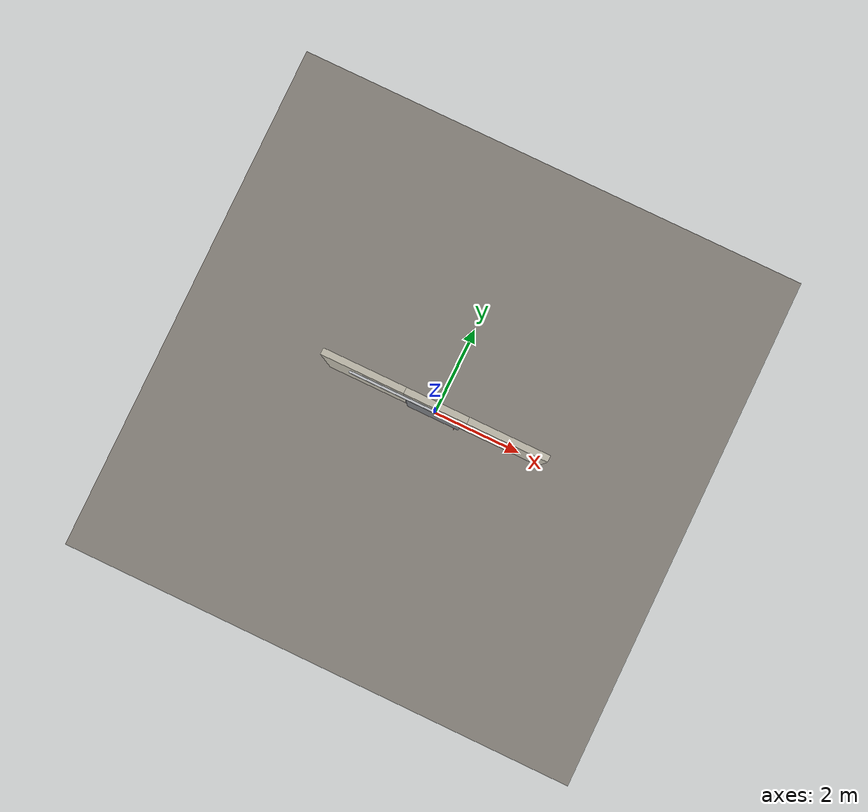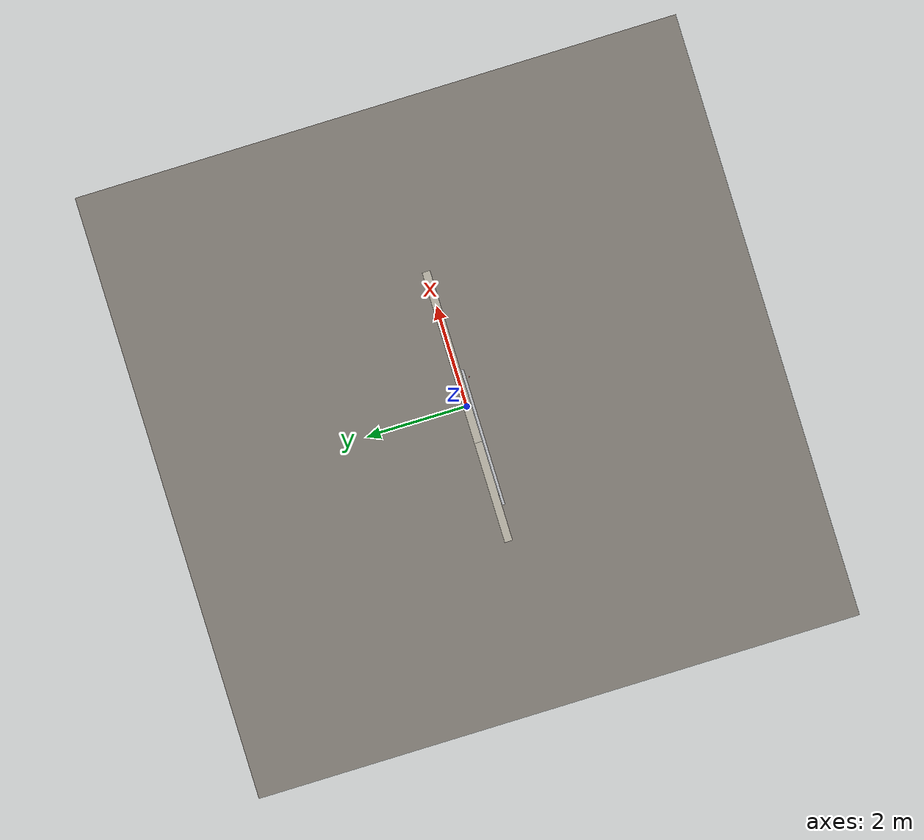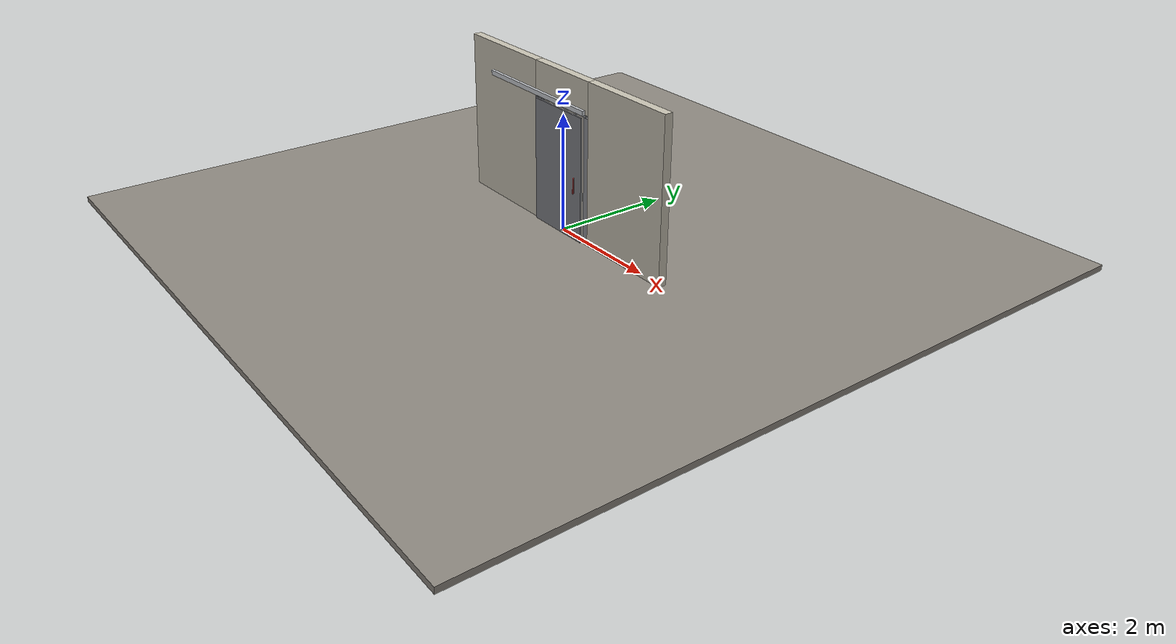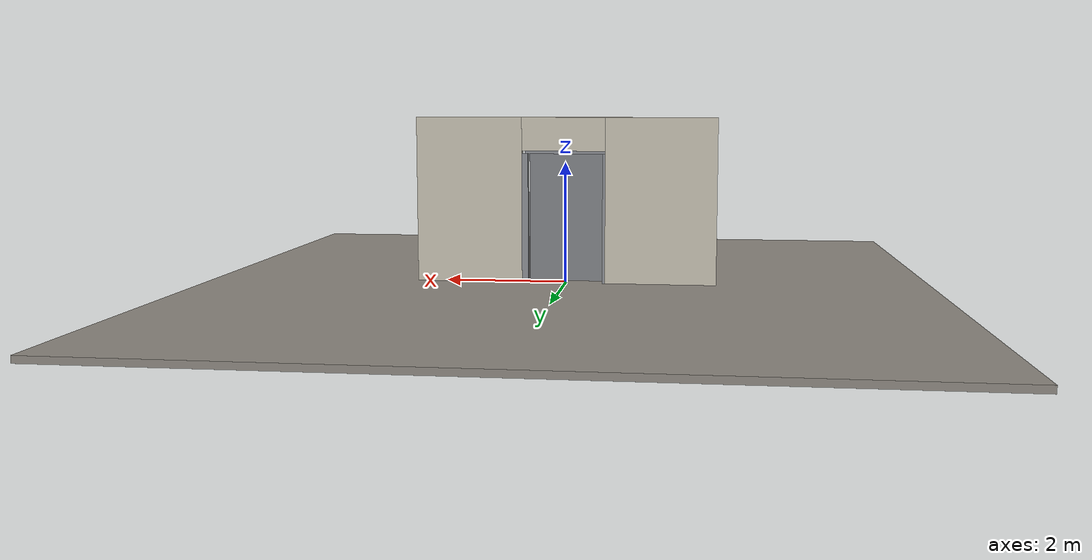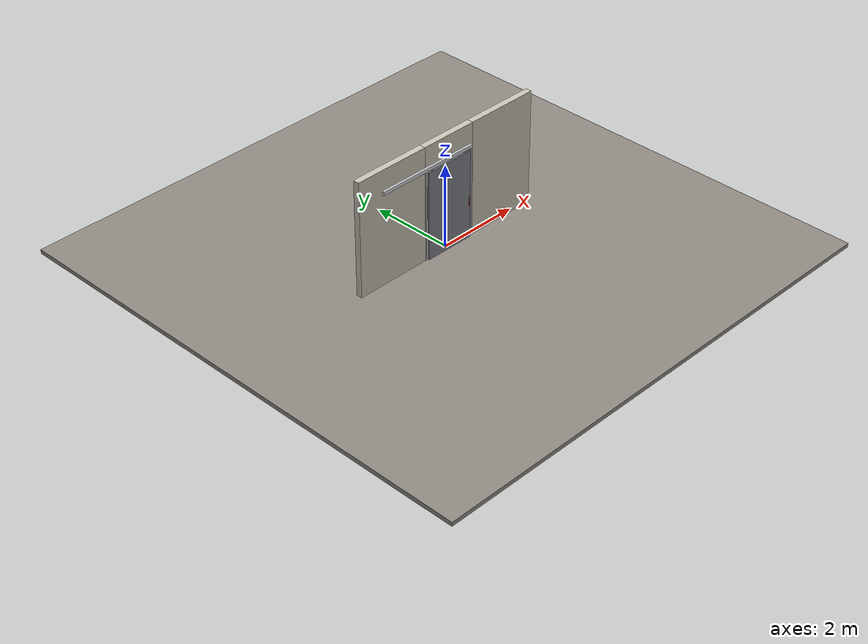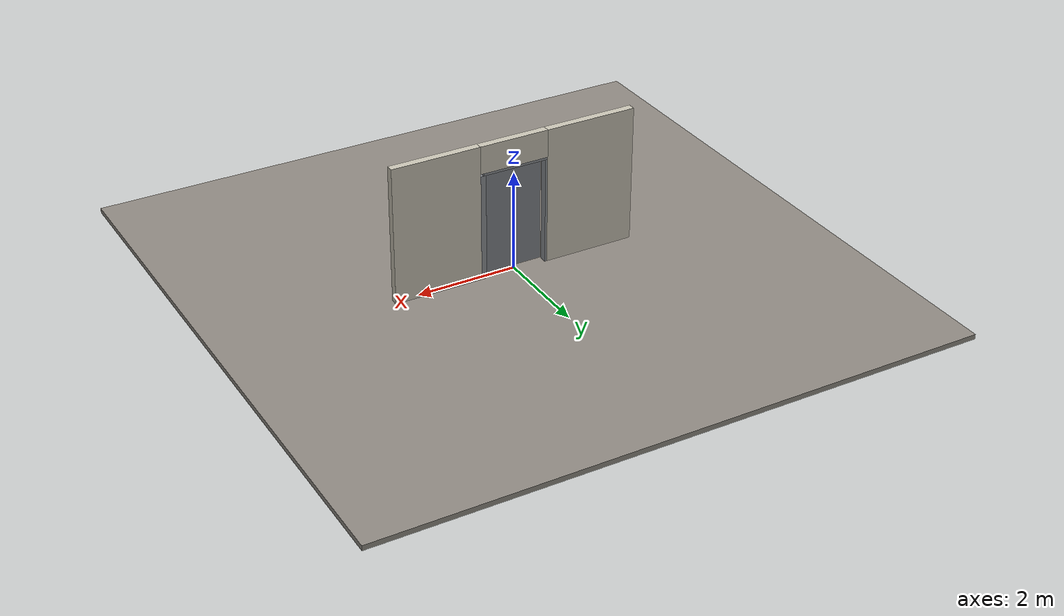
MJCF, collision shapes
<?xml version="1.0" ?>
<mujoco model="db0656_sliding_single_simple">
  <compiler angle="radian" meshdir="../../hardware" texturedir="../../textures" autolimits="true" inertiafromgeom="false"/>
  <option timestep="0.002" integrator="implicitfast" cone="elliptic" impratio="10" noslip_iterations="3">
    <flag multiccd="enable"/>
  </option>
  <size memory="16M"/>
  <default>
    <geom condim="4" solref="0.005 1" solimp="0.95 0.99 0.001"/>
    <joint solreflimit="0.005 1" solimplimit="0.95 0.99 0.001"/>
    <tendon solreflimit="0.005 1"/>
    <equality solref="0.002 1"/>
  </default>
  <visual>
    <headlight ambient="0.4 0.4 0.4" diffuse="0.7 0.7 0.7" specular="0.2 0.2 0.2"/>
    <quality shadowsize="4096"/>
    <map znear="0.01" zfar="60"/>
  </visual>
  <asset>
    <mesh name="pull_f8d79d6331" file="pull_f8d79d6331.obj"/>
    <material name="mat_floor" rgba="0.55 0.53 0.5 1" specular="0.2" shininess="0.15" reflectance="0"/>
    <material name="mat_wall" rgba="0.78 0.76 0.7 1" specular="0.2" shininess="0.1" reflectance="0"/>
    <material name="mat_frame" rgba="0.55 0.56 0.58 1" specular="0.8" shininess="0.55" reflectance="0.4"/>
    <material name="mat_track" rgba="0.8 0.81 0.83 1" specular="0.8" shininess="0.6" reflectance="0.4"/>
    <material name="mat_leaf" rgba="0.5 0.51 0.53 1" specular="0.23" shininess="0.35" reflectance="0.02"/>
    <material name="mat_roller" rgba="0.65 0.66 0.68 1" specular="0.74" shininess="0.5" reflectance="0.36"/>
    <material name="mat_op_stainless" rgba="0.75 0.76 0.77 1" specular="0.8" shininess="0.65" reflectance="0.4"/>
    <material name="mat_hook" rgba="0.75 0.76 0.77 1" specular="0.8" shininess="0.65" reflectance="0.4"/>
    <texture name="skybox" type="skybox" builtin="gradient" rgb1="0.6 0.7 0.85" rgb2="0.9 0.92 0.95" width="256" height="256"/>
  </asset>
  <worldbody>
    <light name="sun" pos="1.5 -2.5 4" dir="-0.3 0.5 -0.8" directional="true" diffuse="0.8 0.8 0.8" specular="0.3 0.3 0.3" castshadow="true"/>
    <light name="fill" pos="-1.5 2.5 3" dir="0.3 -0.5 -0.7" directional="true" diffuse="0.35 0.35 0.4" castshadow="false"/>
    <camera name="robot_view" pos="0 -2.644375 1.817425" xyaxes="1 0 0 0 0.26963 0.962964" fovy="52"/>
    <camera name="far_view" pos="0 2.644375 1.817425" xyaxes="-1 0 0 0 -0.26963 0.962964" fovy="52"/>
    <camera name="iso" pos="2.009725 -2.221275 2.240525" xyaxes="0.741536 0.670913 0 -0.242917 0.268487 0.932151" fovy="46"/>
    <camera name="detail_handle" pos="0.6995 -0.9975 1.28" xyaxes="0.97561 0.219512 0 -0.070934 0.315262 0.94635" fovy="38"/>
    <geom name="floor" type="box" size="6 6 0.05" pos="0 0 -0.05" material="mat_floor" group="0" contype="1" conaffinity="1" friction="0.8 0.005 0.0001" density="2400"/>
    <geom name="wall_left" type="box" size="0.91775 0.0725 1.377" pos="-1.58225 0 1.377" material="mat_wall" group="0" contype="1" conaffinity="1" friction="0.6 0.005 0.0001" density="800"/>
    <geom name="wall_right" type="box" size="0.88775 0.0725 1.377" pos="1.61225 0 1.377" material="mat_wall" group="0" contype="1" conaffinity="1" friction="0.6 0.005 0.0001" density="800"/>
    <geom name="wall_header" type="box" size="0.6945 0.0725 0.2775" pos="0.03 0 2.4765" material="mat_wall" group="0" contype="1" conaffinity="1" friction="0.6 0.005 0.0001" density="800"/>
    <geom name="jamb_l" type="box" size="0.0225 0.0725 1.077" pos="-0.642 0 1.077" material="mat_frame" group="0" contype="1" conaffinity="1" friction="0.6 0.005 0.0001" density="300"/>
    <geom name="jamb_head" type="box" size="0.6645 0.0725 0.0225" pos="0 0 2.1765" material="mat_frame" group="0" contype="1" conaffinity="1" friction="0.6 0.005 0.0001" density="300"/>
    <geom name="track_header" type="box" size="1.269 0.025 0.04" pos="-0.6095 -0.1075 2.239" material="mat_track" group="0" contype="1" conaffinity="1" friction="0.6 0.005 0.0001" density="2700"/>
    <geom name="jamb_latch_0" type="box" size="0.0525 0.0725 1.077" pos="0.672 0 1.077" material="mat_frame" group="0" contype="1" conaffinity="1" friction="0.6 0.005 0.0001" density="300"/>
    <geom name="track_header_bracket" type="box" size="1.0152 0.0055 0.032" pos="-0.6095 -0.0775 2.239" material="mat_hook" group="1" contype="0" conaffinity="0" density="7850"/>
    <site name="approach_point" pos="0 -1.5 0" quat="1 0 0 0" size="0.05" rgba="0.2 0.9 0.2 0.5" group="4"/>
    <site name="goal_point" pos="0 1.5 0" quat="1 0 0 0" size="0.05" rgba="0.2 0.9 0.2 0.5" group="4"/>
    <site name="door_plane_center" pos="0 0 1.077" quat="1 0 0 0" size="0.02" rgba="0.2 0.9 0.2 0.5" group="4"/>
    <body name="leaf" pos="0 -0.1075 0">
      <inertial pos="0.007698 -0.001179 1.088619" mass="80.959976" quat="0.500584 0.498072 -0.501788 0.499549" diaginertia="10.304548407 30.915740545 41.192466194"/>
      <joint name="leaf_slide" type="slide" axis="-1 0 0" limited="true" range="0 1.219" damping="6.047999" frictionloss="95.273538" armature="0.5"/>
      <geom name="leaf_slab" type="box" size="0.6095 0.015 1.067" pos="0 0 1.079" material="mat_leaf" group="0" contype="1" conaffinity="1" friction="0.35 0.005 0.0001" density="1"/>
      <geom name="leaf_carrier_0" type="box" size="0.02 0.005 0.0545" pos="-0.4895 0 2.1405" material="mat_roller" group="1" contype="0" conaffinity="0" density="7850"/>
      <geom name="leaf_carrier_wheel_0" type="cylinder" size="0.014 0.006" pos="-0.4895 0 2.185" quat="0.707107 -0.707107 0 0" material="mat_roller" group="1" contype="0" conaffinity="0" density="7850"/>
      <geom name="leaf_carrier_1" type="box" size="0.02 0.005 0.0545" pos="0.4895 0 2.1405" material="mat_roller" group="1" contype="0" conaffinity="0" density="7850"/>
      <geom name="leaf_carrier_wheel_1" type="cylinder" size="0.014 0.006" pos="0.4895 0 2.185" quat="0.707107 -0.707107 0 0" material="mat_roller" group="1" contype="0" conaffinity="0" density="7850"/>
      <geom name="leaf_pull_n" type="mesh" mesh="pull_f8d79d6331" pos="0.5195 -0.015 1" quat="0.707107 0.707107 0 0" material="mat_op_stainless" group="1" contype="0" conaffinity="0" density="3000"/>
      <geom name="leaf_pull_col_n" type="capsule" size="0.0125 0.13" pos="0.5195 -0.09 1" material="mat_op_stainless" group="3" contype="1" conaffinity="1" rgba="0.8 0.3 0.3 0.25" friction="0.7 0.01 0.0001" density="3000"/>
      <site name="leaf_pull_grip_n" pos="0.5195 -0.09 1" quat="1 0 0 0" size="0.012" rgba="0.2 0.9 0.2 0.5" group="4"/>
      <site name="leaf_edge_mid" pos="0.6095 0 1.079" quat="1 0 0 0" size="0.02" rgba="0.2 0.9 0.2 0.5" group="4"/>
    </body>
  </worldbody>
  <sensor>
    <jointpos name="leaf_slide_pos" joint="leaf_slide"/>
    <jointvel name="leaf_slide_vel" joint="leaf_slide"/>
  </sensor>
</mujoco>
